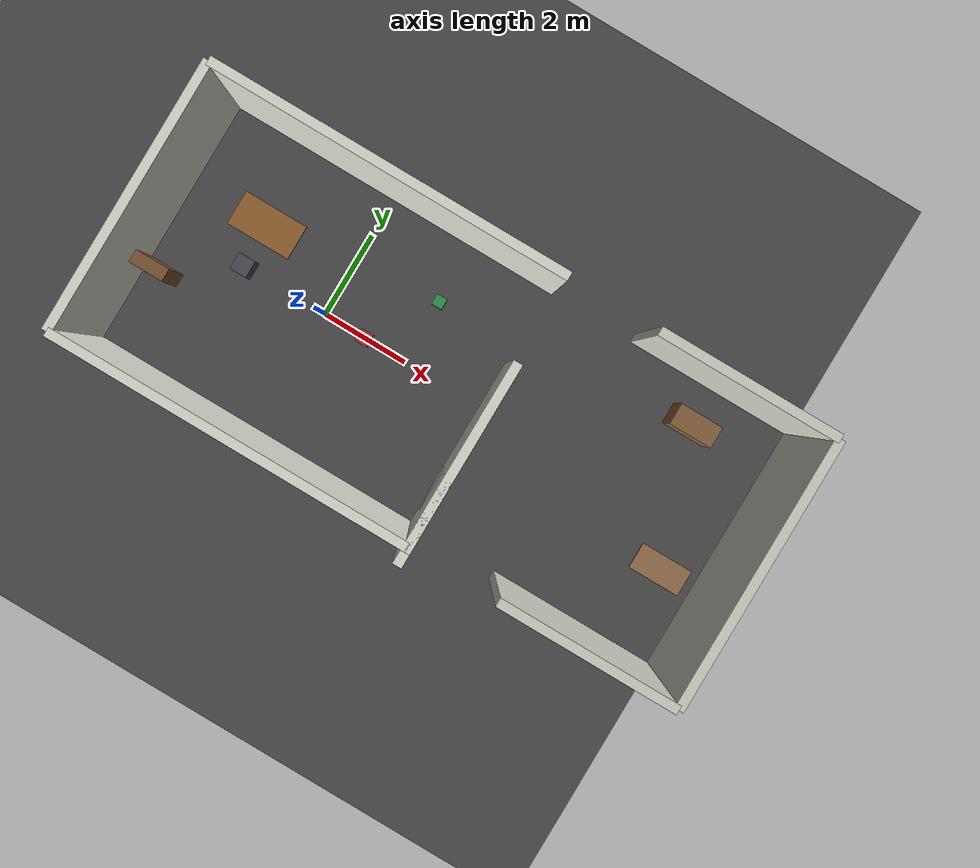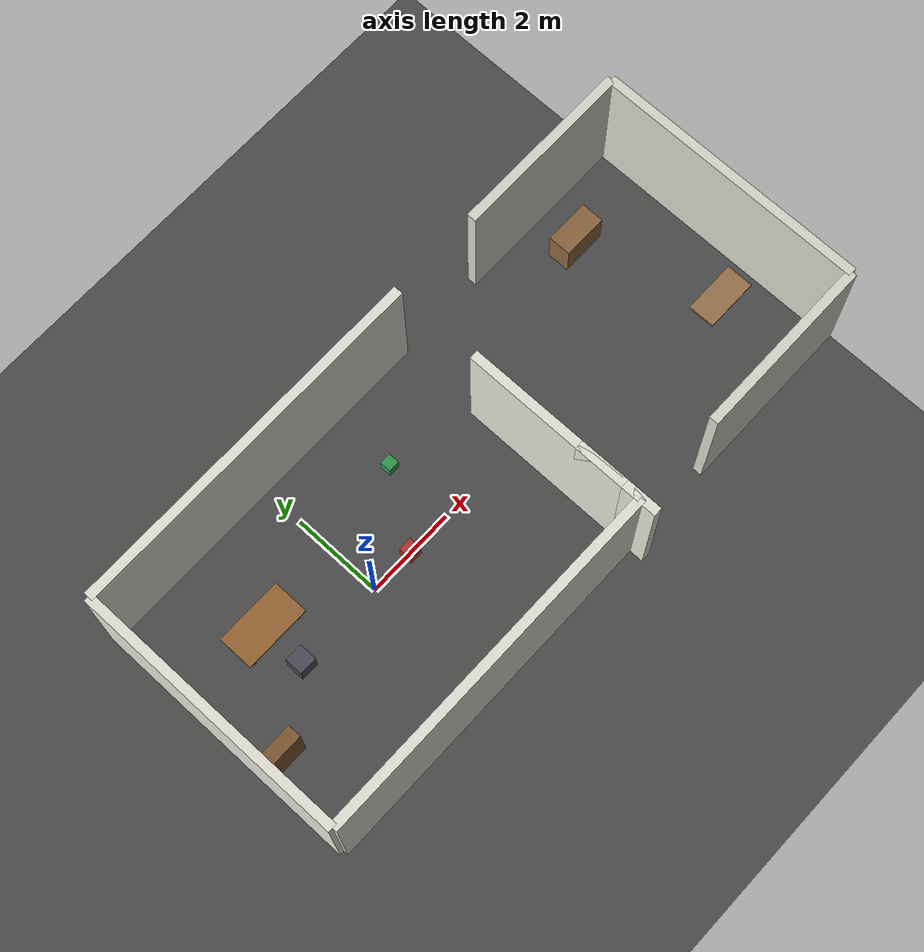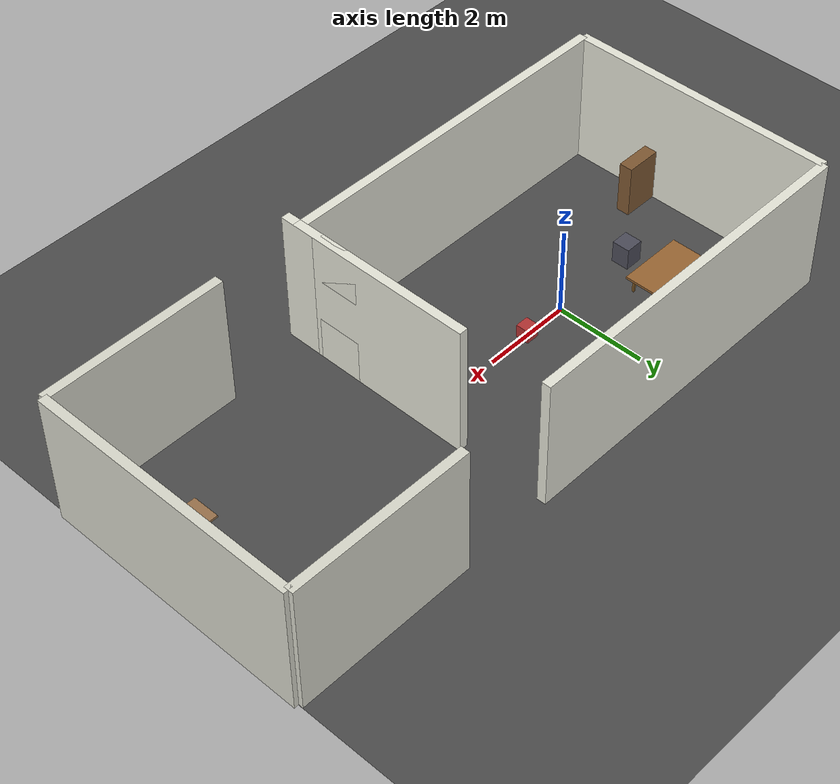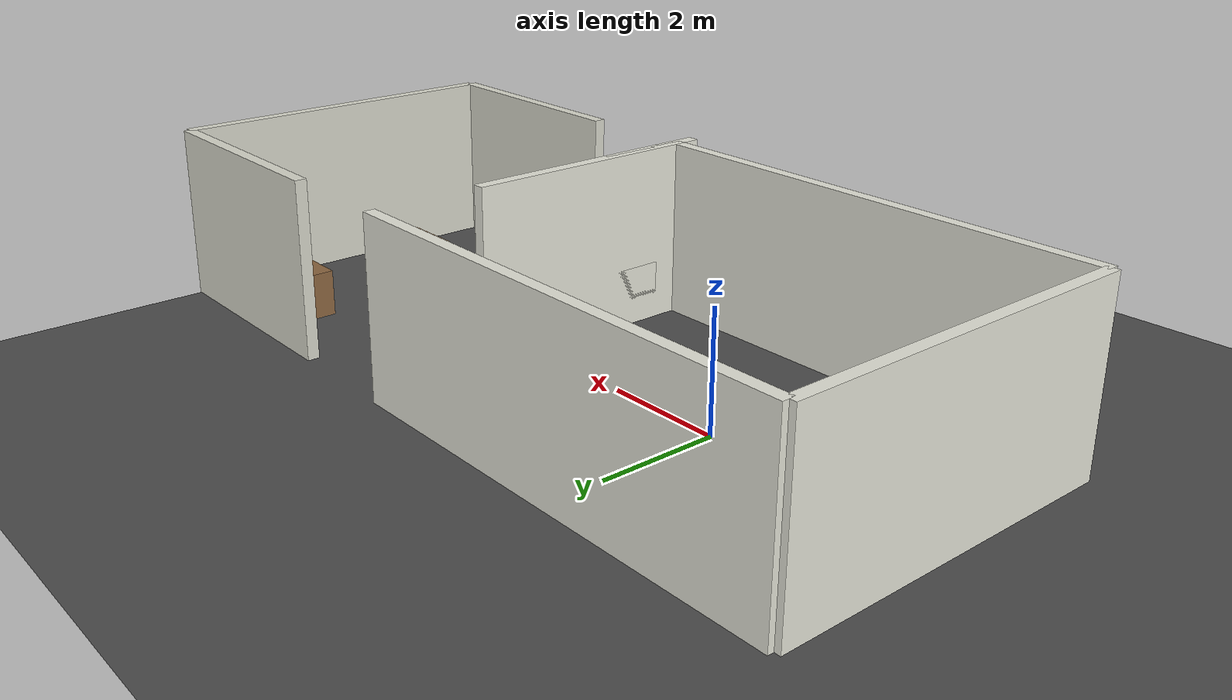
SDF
<sdf version='1.9'>
  <world name='room_world'>
    <!-- Physics settings -->
    <physics name='1ms' type='ignored'>
      <max_step_size>0.001</max_step_size>
      <real_time_factor>1</real_time_factor>
      <real_time_update_rate>1000</real_time_update_rate>
    </physics>

    <!-- Gazebo plugins -->
    <plugin name='gz::sim::systems::Physics' filename='ignition-gazebo-physics-system'/>
    <plugin name='gz::sim::systems::UserCommands' filename='ignition-gazebo-user-commands-system'/>
    <plugin name='gz::sim::systems::SceneBroadcaster' filename='ignition-gazebo-scene-broadcaster-system'/>
    <plugin name='gz::sim::systems::Contact' filename='ignition-gazebo-contact-system'/>
    <plugin name='ignition::gazebo::systems::Sensors' filename='ignition-gazebo-sensors-system'/>

    <!-- Environment -->
    <gravity>0 0 -9.8</gravity>
    <magnetic_field>6e-06 2.3e-05 -4.2e-05</magnetic_field>
    <atmosphere type='adiabatic'/>

    <!-- Scene settings -->
    <scene>
      <ambient>0.6 0.6 0.6 1</ambient>
      <background>0.8 0.85 0.9 1</background>
      <shadows>true</shadows>
      <grid>false</grid>
    </scene>

    <!-- Ground plane (floor) -->
    <model name='floor'>
      <static>true</static>
      <link name='link'>
        <collision name='collision'>
          <geometry>
            <plane>
              <normal>0 0 1</normal>
              <size>20 20</size>
            </plane>
          </geometry>
          <surface>
            <friction>
              <ode>
                <mu>1.0</mu>
                <mu2>1.0</mu2>
              </ode>
            </friction>
          </surface>
        </collision>
        <visual name='visual'>
          <geometry>
            <plane>
              <normal>0 0 1</normal>
              <size>20 20</size>
            </plane>
          </geometry>
          <material>
            <script>
              <uri>file://media/materials/scripts/gazebo.material</uri>
              <name>Gazebo/DarkGrey</name>
            </script>
          </material>
        </visual>
      </link>
    </model>

    <!-- Room 1: Main Room (8m x 6m) -->
    <!-- Back wall -->
    <model name='room1_back_wall'>
      <static>true</static>
      <link name='link'>
        <pose>0 3 1.5 0 0 0</pose>
        <collision name='collision'>
          <geometry>
            <box>
              <size>8 0.2 3</size>
            </box>
          </geometry>
        </collision>
        <visual name='visual'>
          <geometry>
            <box>
              <size>8 0.2 3</size>
            </box>
          </geometry>
          <material>
            <diffuse>0.9 0.9 0.85 1</diffuse>
          </material>
        </visual>
      </link>
    </model>

    <!-- Front wall -->
    <model name='room1_front_wall'>
      <static>true</static>
      <link name='link'>
        <pose>0 -3 1.5 0 0 0</pose>
        <collision name='collision'>
          <geometry>
            <box>
              <size>8 0.2 3</size>
            </box>
          </geometry>
        </collision>
        <visual name='visual'>
          <geometry>
            <box>
              <size>8 0.2 3</size>
            </box>
          </geometry>
          <material>
            <diffuse>0.9 0.9 0.85 1</diffuse>
          </material>
        </visual>
      </link>
    </model>

    <!-- Left wall -->
    <model name='room1_left_wall'>
      <static>true</static>
      <link name='link'>
        <pose>-4 0 1.5 0 0 0</pose>
        <collision name='collision'>
          <geometry>
            <box>
              <size>0.2 6 3</size>
            </box>
          </geometry>
        </collision>
        <visual name='visual'>
          <geometry>
            <box>
              <size>0.2 6 3</size>
            </box>
          </geometry>
          <material>
            <diffuse>0.9 0.9 0.85 1</diffuse>
          </material>
        </visual>
      </link>
    </model>

    <!-- Right wall with door opening -->
    <model name='room1_right_wall_bottom'>
      <static>true</static>
      <link name='link'>
        <pose>4 -2 0.5 0 0 0</pose>
        <collision name='collision'>
          <geometry>
            <box>
              <size>0.2 1 1</size>
            </box>
          </geometry>
        </collision>
        <visual name='visual'>
          <geometry>
            <box>
              <size>0.2 1 1</size>
            </box>
          </geometry>
          <material>
            <diffuse>0.9 0.9 0.85 1</diffuse>
          </material>
        </visual>
      </link>
    </model>

    <model name='room1_right_wall_top'>
      <static>true</static>
      <link name='link'>
        <pose>4 -2 2.5 0 0 0</pose>
        <collision name='collision'>
          <geometry>
            <box>
              <size>0.2 1 1</size>
            </box>
          </geometry>
        </collision>
        <visual name='visual'>
          <geometry>
            <box>
              <size>0.2 1 1</size>
            </box>
          </geometry>
          <material>
            <diffuse>0.9 0.9 0.85 1</diffuse>
          </material>
        </visual>
      </link>
    </model>

    <model name='room1_right_wall_left'>
      <static>true</static>
      <link name='link'>
        <pose>4 -3 1.5 0 0 0</pose>
        <collision name='collision'>
          <geometry>
            <box>
              <size>0.2 0.8 3</size>
            </box>
          </geometry>
        </collision>
        <visual name='visual'>
          <geometry>
            <box>
              <size>0.2 0.8 3</size>
            </box>
          </geometry>
          <material>
            <diffuse>0.9 0.9 0.85 1</diffuse>
          </material>
        </visual>
      </link>
    </model>

    <model name='room1_right_wall_right'>
      <static>true</static>
      <link name='link'>
        <pose>4 -1 1.5 0 0 0</pose>
        <collision name='collision'>
          <geometry>
            <box>
              <size>0.2 4.2 3</size>
            </box>
          </geometry>
        </collision>
        <visual name='visual'>
          <geometry>
            <box>
              <size>0.2 4.2 3</size>
            </box>
          </geometry>
          <material>
            <diffuse>0.9 0.9 0.85 1</diffuse>
          </material>
        </visual>
      </link>
    </model>

    <!-- Room 2: Side Room (4m x 6m) -->
    <!-- Back wall -->
    <model name='room2_back_wall'>
      <static>true</static>
      <link name='link'>
        <pose>8 3 1.5 0 0 0</pose>
        <collision name='collision'>
          <geometry>
            <box>
              <size>4 0.2 3</size>
            </box>
          </geometry>
        </collision>
        <visual name='visual'>
          <geometry>
            <box>
              <size>4 0.2 3</size>
            </box>
          </geometry>
          <material>
            <diffuse>0.85 0.85 0.8 1</diffuse>
          </material>
        </visual>
      </link>
    </model>

    <!-- Front wall -->
    <model name='room2_front_wall'>
      <static>true</static>
      <link name='link'>
        <pose>8 -3 1.5 0 0 0</pose>
        <collision name='collision'>
          <geometry>
            <box>
              <size>4 0.2 3</size>
            </box>
          </geometry>
        </collision>
        <visual name='visual'>
          <geometry>
            <box>
              <size>4 0.2 3</size>
            </box>
          </geometry>
          <material>
            <diffuse>0.85 0.85 0.8 1</diffuse>
          </material>
        </visual>
      </link>
    </model>

    <!-- Right wall -->
    <model name='room2_right_wall'>
      <static>true</static>
      <link name='link'>
        <pose>10 0 1.5 0 0 0</pose>
        <collision name='collision'>
          <geometry>
            <box>
              <size>0.2 6 3</size>
            </box>
          </geometry>
        </collision>
        <visual name='visual'>
          <geometry>
            <box>
              <size>0.2 6 3</size>
            </box>
          </geometry>
          <material>
            <diffuse>0.85 0.85 0.8 1</diffuse>
          </material>
        </visual>
      </link>
    </model>

    <!-- Furniture: Table in Room 1 -->
    <model name='table'>
      <static>true</static>
      <link name='link'>
        <pose>-2 1 0.4 0 0 0</pose>
        <collision name='collision'>
          <geometry>
            <box>
              <size>1.5 0.8 0.05</size>
            </box>
          </geometry>
        </collision>
        <visual name='visual'>
          <geometry>
            <box>
              <size>1.5 0.8 0.05</size>
            </box>
          </geometry>
          <material>
            <diffuse>0.6 0.4 0.2 1</diffuse>
          </material>
        </visual>
      </link>
    </model>

    <!-- Table legs -->
    <model name='table_leg1'>
      <static>true</static>
      <link name='link'>
        <pose>-2.6 1.3 0.2 0 0 0</pose>
        <collision name='collision'>
          <geometry>
            <box>
              <size>0.05 0.05 0.4</size>
            </box>
          </geometry>
        </collision>
        <visual name='visual'>
          <geometry>
            <box>
              <size>0.05 0.05 0.4</size>
            </box>
          </geometry>
          <material>
            <diffuse>0.5 0.35 0.15 1</diffuse>
          </material>
        </visual>
      </link>
    </model>

    <model name='table_leg2'>
      <static>true</static>
      <link name='link'>
        <pose>-1.4 1.3 0.2 0 0 0</pose>
        <collision name='collision'>
          <geometry>
            <box>
              <size>0.05 0.05 0.4</size>
            </box>
          </geometry>
        </collision>
        <visual name='visual'>
          <geometry>
            <box>
              <size>0.05 0.05 0.4</size>
            </box>
          </geometry>
          <material>
            <diffuse>0.5 0.35 0.15 1</diffuse>
          </material>
        </visual>
      </link>
    </model>

    <model name='table_leg3'>
      <static>true</static>
      <link name='link'>
        <pose>-2.6 0.7 0.2 0 0 0</pose>
        <collision name='collision'>
          <geometry>
            <box>
              <size>0.05 0.05 0.4</size>
            </box>
          </geometry>
        </collision>
        <visual name='visual'>
          <geometry>
            <box>
              <size>0.05 0.05 0.4</size>
            </box>
          </geometry>
          <material>
            <diffuse>0.5 0.35 0.15 1</diffuse>
          </material>
        </visual>
      </link>
    </model>

    <model name='table_leg4'>
      <static>true</static>
      <link name='link'>
        <pose>-1.4 0.7 0.2 0 0 0</pose>
        <collision name='collision'>
          <geometry>
            <box>
              <size>0.05 0.05 0.4</size>
            </box>
          </geometry>
        </collision>
        <visual name='visual'>
          <geometry>
            <box>
              <size>0.05 0.05 0.4</size>
            </box>
          </geometry>
          <material>
            <diffuse>0.5 0.35 0.15 1</diffuse>
          </material>
        </visual>
      </link>
    </model>

    <!-- Furniture: Bookshelf in Room 1 -->
    <model name='bookshelf'>
      <static>true</static>
      <link name='link'>
        <pose>-3.5 -1 0.6 0 0 0</pose>
        <collision name='collision'>
          <geometry>
            <box>
              <size>0.8 0.3 1.2</size>
            </box>
          </geometry>
        </collision>
        <visual name='visual'>
          <geometry>
            <box>
              <size>0.8 0.3 1.2</size>
            </box>
          </geometry>
          <material>
            <diffuse>0.5 0.35 0.2 1</diffuse>
          </material>
        </visual>
      </link>
    </model>

    <!-- Furniture: Chair -->
    <model name='chair'>
      <static>true</static>
      <link name='link'>
        <pose>-2 0 0.25 0 0 0</pose>
        <collision name='collision'>
          <geometry>
            <box>
              <size>0.4 0.4 0.5</size>
            </box>
          </geometry>
        </collision>
        <visual name='visual'>
          <geometry>
            <box>
              <size>0.4 0.4 0.5</size>
            </box>
          </geometry>
          <material>
            <diffuse>0.3 0.3 0.35 1</diffuse>
          </material>
        </visual>
      </link>
    </model>

    <!-- Furniture: Cabinet in Room 2 -->
    <model name='cabinet'>
      <static>true</static>
      <link name='link'>
        <pose>8 2 0.4 0 0 0</pose>
        <collision name='collision'>
          <geometry>
            <box>
              <size>1.0 0.5 0.8</size>
            </box>
          </geometry>
        </collision>
        <visual name='visual'>
          <geometry>
            <box>
              <size>1.0 0.5 0.8</size>
            </box>
          </geometry>
          <material>
            <diffuse>0.55 0.4 0.25 1</diffuse>
          </material>
        </visual>
      </link>
    </model>

    <!-- Furniture: Desk in Room 2 -->
    <model name='desk'>
      <static>true</static>
      <link name='link'>
        <pose>9 -1 0.4 0 0 0</pose>
        <collision name='collision'>
          <geometry>
            <box>
              <size>1.2 0.6 0.05</size>
            </box>
          </geometry>
        </collision>
        <visual name='visual'>
          <geometry>
            <box>
              <size>1.2 0.6 0.05</size>
            </box>
          </geometry>
          <material>
            <diffuse>0.6 0.45 0.3 1</diffuse>
          </material>
        </visual>
      </link>
    </model>

    <!-- Obstacles for navigation -->
    <model name='obstacle1'>
      <static>true</static>
      <link name='link'>
        <pose>1 0 0.15 0 0 0</pose>
        <collision name='collision'>
          <geometry>
            <box>
              <size>0.3 0.3 0.3</size>
            </box>
          </geometry>
        </collision>
        <visual name='visual'>
          <geometry>
            <box>
              <size>0.3 0.3 0.3</size>
            </box>
          </geometry>
          <material>
            <diffuse>0.7 0.2 0.2 1</diffuse>
          </material>
        </visual>
      </link>
    </model>

    <model name='obstacle2'>
      <static>true</static>
      <link name='link'>
        <pose>2 1.5 0.15 0 0 0</pose>
        <collision name='collision'>
          <geometry>
            <box>
              <size>0.25 0.25 0.3</size>
            </box>
          </geometry>
        </collision>
        <visual name='visual'>
          <geometry>
            <box>
              <size>0.25 0.25 0.3</size>
            </box>
          </geometry>
          <material>
            <diffuse>0.2 0.6 0.3 1</diffuse>
          </material>
        </visual>
      </link>
    </model>

    <!-- Lighting -->
    <light name='sun' type='directional'>
      <pose>0 0 10 0 -0 0</pose>
      <cast_shadows>true</cast_shadows>
      <intensity>1</intensity>
      <direction>-0.5 0.1 -0.9</direction>
      <diffuse>0.9 0.9 0.85 1</diffuse>
      <specular>0.3 0.3 0.3 1</specular>
    </light>

    <!-- Ambient light -->
    <light name='room_light1' type='point'>
      <pose>-2 0 2.8 0 0 0</pose>
      <diffuse>1 0.95 0.9 1</diffuse>
      <specular>0.2 0.2 0.2 1</specular>
      <intensity>0.5</intensity>
      <attenuation>
        <range>10</range>
        <linear>0.1</linear>
        <constant>0.5</constant>
        <quadratic>0.01</quadratic>
      </attenuation>
    </light>

    <light name='room_light2' type='point'>
      <pose>8 0 2.8 0 0 0</pose>
      <diffuse>1 0.95 0.9 1</diffuse>
      <specular>0.2 0.2 0.2 1</specular>
      <intensity>0.5</intensity>
      <attenuation>
        <range>10</range>
        <linear>0.1</linear>
        <constant>0.5</constant>
        <quadratic>0.01</quadratic>
      </attenuation>
    </light>
  </world>
</sdf>
